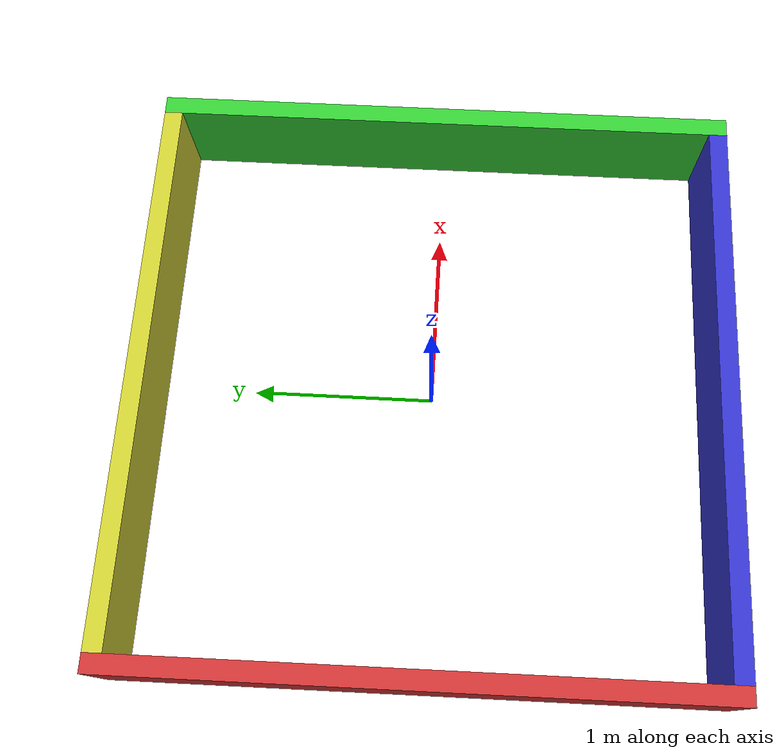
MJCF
<mujoco model="ball_pit">
  <worldbody>
    <body name="ball_pit_body" pos="0 0 0">
      <!-- Left wall -->
      <geom
        name="wall_left"
        type="box"
        pos="-1.55 0 0.25"
        size="0.05 1.6 0.25"
        contype="1"
        conaffinity="1"
        rgba="0.8 0.2 0.2 1"/>

      <!-- Right wall -->
      <geom
        name="wall_right"
        type="box"
        pos="1.55 0 0.25"
        size="0.05 1.6 0.25"
        contype="1"
        conaffinity="1"
        rgba="0.2 0.8 0.2 1"/>

      <!-- Bottom wall -->
      <geom
        name="wall_bottom"
        type="box"
        pos="0 -1.55 0.25"
        size="1.5 0.05 0.25"
        contype="1"
        conaffinity="1"
        rgba="0.2 0.2 0.8 1"/>

      <!-- Top wall -->
      <geom
        name="wall_top"
        type="box"
        pos="0 1.55 0.25"
        size="1.5 0.05 0.25"
        contype="1"
        conaffinity="1"
        rgba="0.8 0.8 0.2 1"/>
    </body>
  </worldbody>
</mujoco>
